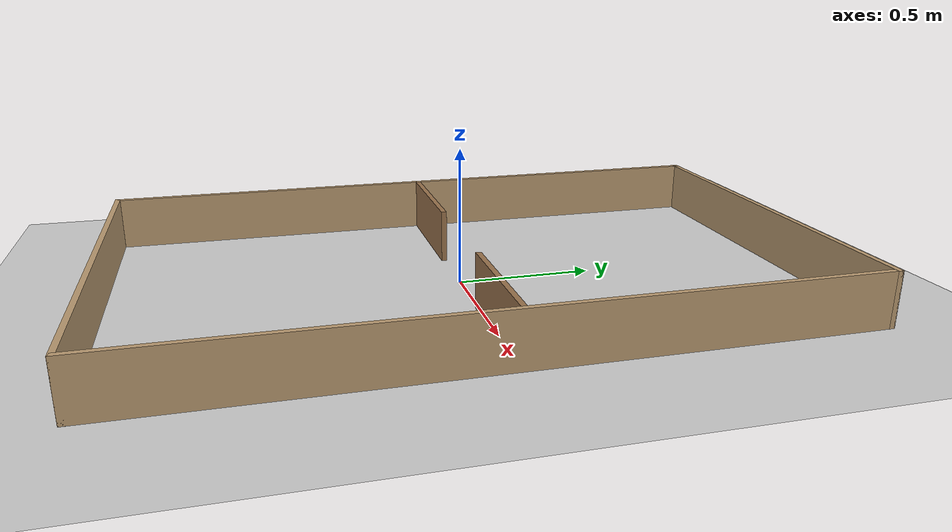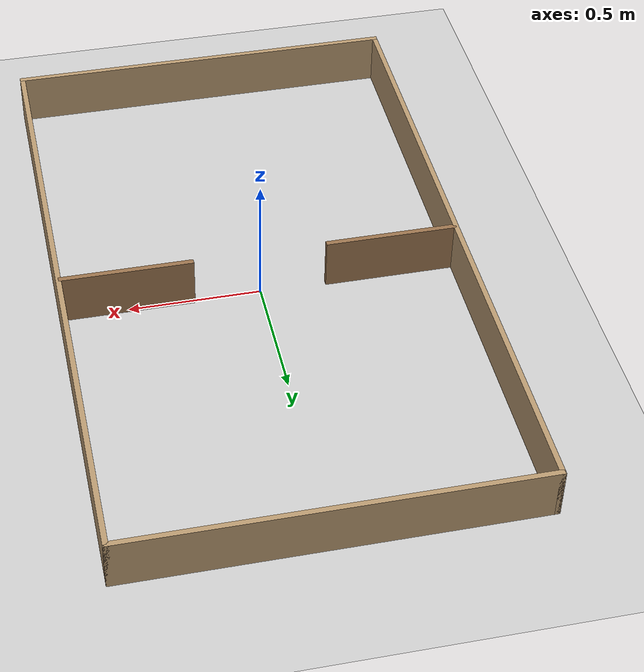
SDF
<?xml version="1.0" ?>
<sdf version="1.8">
  <world name="fleet_arena">

    <physics name="1ms" type="ignored">
      <max_step_size>0.001</max_step_size>
      <real_time_factor>1.0</real_time_factor>
    </physics>

    <plugin filename="gz-sim-physics-system"
            name="gz::sim::systems::Physics"/>
    <plugin filename="gz-sim-user-commands-system"
            name="gz::sim::systems::UserCommands"/>
    <plugin filename="gz-sim-scene-broadcaster-system"
            name="gz::sim::systems::SceneBroadcaster"/>
    <plugin filename="gz-sim-sensors-system"
            name="gz::sim::systems::Sensors">
      <render_engine>ogre2</render_engine>
    </plugin>
    <plugin filename="gz-sim-imu-system"
            name="gz::sim::systems::Imu"/>

    <light type="directional" name="sun">
      <cast_shadows>true</cast_shadows>
      <pose>0 0 10 0 0 0</pose>
      <diffuse>0.8 0.8 0.8 1</diffuse>
      <specular>0.2 0.2 0.2 1</specular>
      <direction>-0.5 0.1 -0.9</direction>
    </light>

    <model name="ground_plane">
      <static>true</static>
      <link name="link">
        <collision name="collision">
          <geometry><plane><normal>0 0 1</normal><size>10 10</size></plane></geometry>
        </collision>
        <visual name="visual">
          <geometry><plane><normal>0 0 1</normal><size>10 10</size></plane></geometry>
          <material>
            <ambient>0.8 0.8 0.8 1</ambient>
            <diffuse>0.8 0.8 0.8 1</diffuse>
          </material>
        </visual>
      </link>
    </model>

    <!--
      벽. 두께 2cm, 높이 20cm. 라이다가 바닥에서 12.5cm 이므로 확실히 스캔된다.
      pose 의 z 는 벽 중심이라 높이의 절반(0.1)이다.
    -->

    <model name="wall_north">
      <static>true</static>
      <pose>0 1.25 0.1 0 0 0</pose>
      <link name="link">
        <collision name="collision">
          <geometry><box><size>1.52 0.02 0.2</size></box></geometry>
        </collision>
        <visual name="visual">
          <geometry><box><size>1.52 0.02 0.2</size></box></geometry>
          <material>
            <ambient>0.72 0.60 0.44 1</ambient>
            <diffuse>0.72 0.60 0.44 1</diffuse>
          </material>
        </visual>
      </link>
    </model>

    <model name="wall_south">
      <static>true</static>
      <pose>0 -1.25 0.1 0 0 0</pose>
      <link name="link">
        <collision name="collision">
          <geometry><box><size>1.52 0.02 0.2</size></box></geometry>
        </collision>
        <visual name="visual">
          <geometry><box><size>1.52 0.02 0.2</size></box></geometry>
          <material>
            <ambient>0.72 0.60 0.44 1</ambient>
            <diffuse>0.72 0.60 0.44 1</diffuse>
          </material>
        </visual>
      </link>
    </model>

    <model name="wall_west">
      <static>true</static>
      <pose>-0.75 0 0.1 0 0 0</pose>
      <link name="link">
        <collision name="collision">
          <geometry><box><size>0.02 2.52 0.2</size></box></geometry>
        </collision>
        <visual name="visual">
          <geometry><box><size>0.02 2.52 0.2</size></box></geometry>
          <material>
            <ambient>0.72 0.60 0.44 1</ambient>
            <diffuse>0.72 0.60 0.44 1</diffuse>
          </material>
        </visual>
      </link>
    </model>

    <model name="wall_east">
      <static>true</static>
      <pose>0.75 0 0.1 0 0 0</pose>
      <link name="link">
        <collision name="collision">
          <geometry><box><size>0.02 2.52 0.2</size></box></geometry>
        </collision>
        <visual name="visual">
          <geometry><box><size>0.02 2.52 0.2</size></box></geometry>
          <material>
            <ambient>0.72 0.60 0.44 1</ambient>
            <diffuse>0.72 0.60 0.44 1</diffuse>
          </material>
        </visual>
      </link>
    </model>

    <!--
      가운데 칸막이. x in [-0.75, -0.25] 와 [0.25, 0.75] 를 막아 폭 0.5m 통로를
      하나 남긴다. 교착 테스트용이므로, 열린 아레나로 쓰려면 이 둘을 지운다.
    -->

    <model name="divider_west">
      <static>true</static>
      <pose>-0.5 0 0.1 0 0 0</pose>
      <link name="link">
        <collision name="collision">
          <geometry><box><size>0.5 0.02 0.2</size></box></geometry>
        </collision>
        <visual name="visual">
          <geometry><box><size>0.5 0.02 0.2</size></box></geometry>
          <material>
            <ambient>0.60 0.45 0.30 1</ambient>
            <diffuse>0.60 0.45 0.30 1</diffuse>
          </material>
        </visual>
      </link>
    </model>

    <model name="divider_east">
      <static>true</static>
      <pose>0.5 0 0.1 0 0 0</pose>
      <link name="link">
        <collision name="collision">
          <geometry><box><size>0.5 0.02 0.2</size></box></geometry>
        </collision>
        <visual name="visual">
          <geometry><box><size>0.5 0.02 0.2</size></box></geometry>
          <material>
            <ambient>0.60 0.45 0.30 1</ambient>
            <diffuse>0.60 0.45 0.30 1</diffuse>
          </material>
        </visual>
      </link>
    </model>

  </world>
</sdf>
